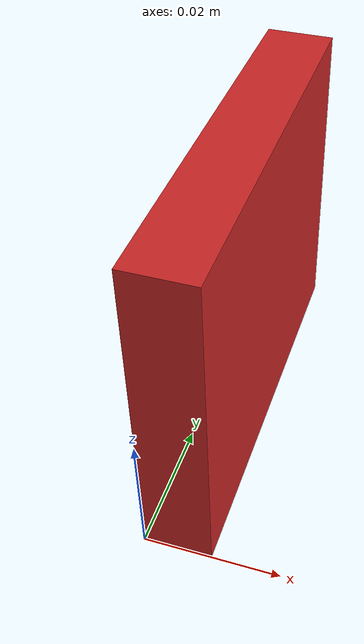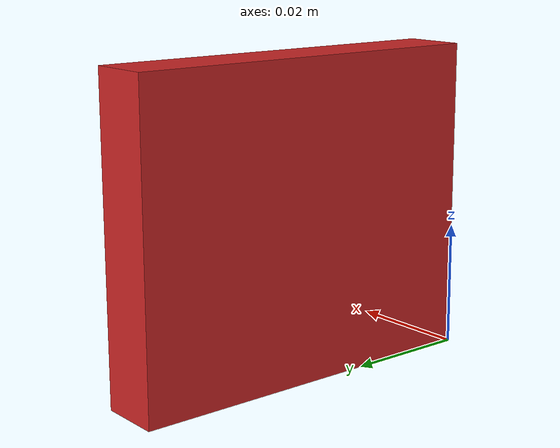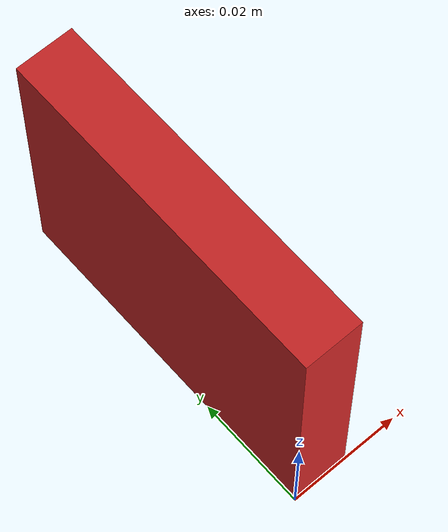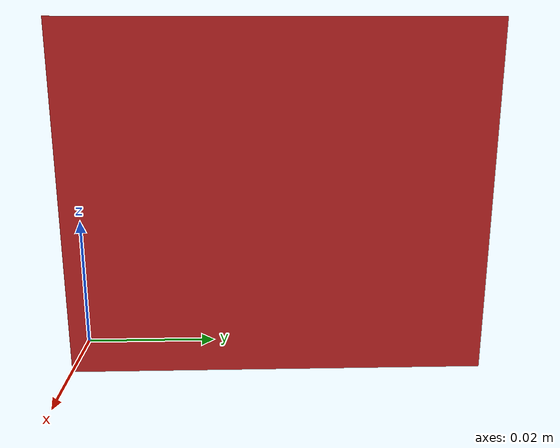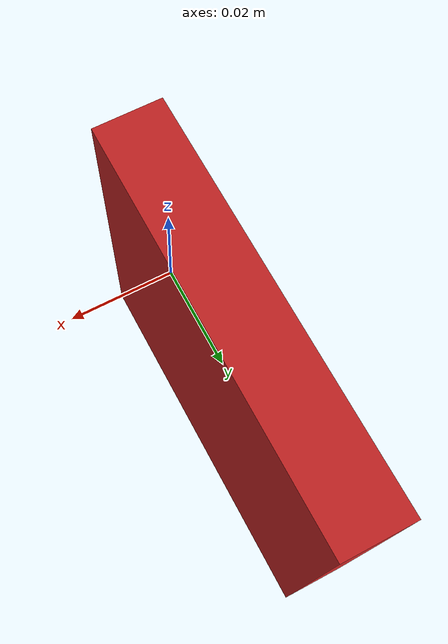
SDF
<?xml version="1.0" ?>
<sdf version="1.5">
  <model name="camera">
    <pose>0.005 0.03 0.025 0 0 0</pose>
    <gravity>false</gravity>

    <static>true</static>
    <link name="link">
      <inertial>
        <mass>1.0</mass>
        <inertia> <!-- inertias are tricky to compute -->
          <!-- http://gazebosim.org/tutorials?tut=inertia&cat=build_robot -->
          <ixx>0.000415</ixx>       <!-- for a box: ixx = 0.083 * mass * (y*y + z*z) -->
          <ixy>0.0</ixy>         <!-- for a box: ixy = 0 -->
          <ixz>0.0</ixz>         <!-- for a box: ixz = 0 -->
          <iyy>0.000415</iyy>       <!-- for a box: iyy = 0.083 * mass * (x*x + z*z) -->
          <iyz>0.0</iyz>         <!-- for a box: iyz = 0 -->
          <izz>0.000415</izz>       <!-- for a box: izz = 0.083 * mass * (x*x + y*y) -->
        </inertia>
      </inertial>
      <collision name="collision">
        <geometry>
          <box>
            <size>0.01 0.06 0.05</size>
          </box>
        </geometry>
      </collision>
      <visual name="visual">
        <geometry>
          <box>
            <size>0.01 0.06 0.05</size>
          </box>
        </geometry>
        <material>
          <script>
            <uri>file://media/materials/scripts/gazebo.material</uri>
            <name>Gazebo/Red</name>
          </script>
        </material>
      </visual>
      <sensor name="camera" type="camera" >
        <update_rate>30</update_rate>
        <always_on>1</always_on>
        <visualize>true</visualize>
        <camera>
          <horizontal_fov>1.173</horizontal_fov>
          <image>
            <width>640</width>
            <height>480</height>
            <format>R8G8B8</format>
          </image>
          <clip>
            <near>0.1</near>
            <far>100</far>
          </clip>
          <noise>
            <type>gaussian</type>
            <mean>0.0</mean>
            <stddev>0.007</stddev>
        </noise>
        </camera>
        <plugin name="cameracontroller" filename="libgazebo_ros_camera.so">
          <alwaysOn>true</alwaysOn>
          <updateRate>0.0</updateRate>
          <cameraName>camera</cameraName>
          <imageTopicName>image_raw</imageTopicName>
          <cameraInfoTopicName>camerainfo</cameraInfoTopicName>
          <frameName>cameralink_optical</frameName>
          <hackBaseline>0.0</hackBaseline>
          <distortionK1>0.0</distortionK1>
          <distortionK2>0.0</distortionK2>
          <distortionK3>0.0</distortionK3>
          <distortionT1>0.0</distortionT1>
          <distortionT2>0.0</distortionT2>
          <CxPrime>0</CxPrime>
          <Cx>0.0</Cx>
          <Cy>0.0</Cy>
      </plugin>
      </sensor>
    </link>

  </model>
</sdf>
